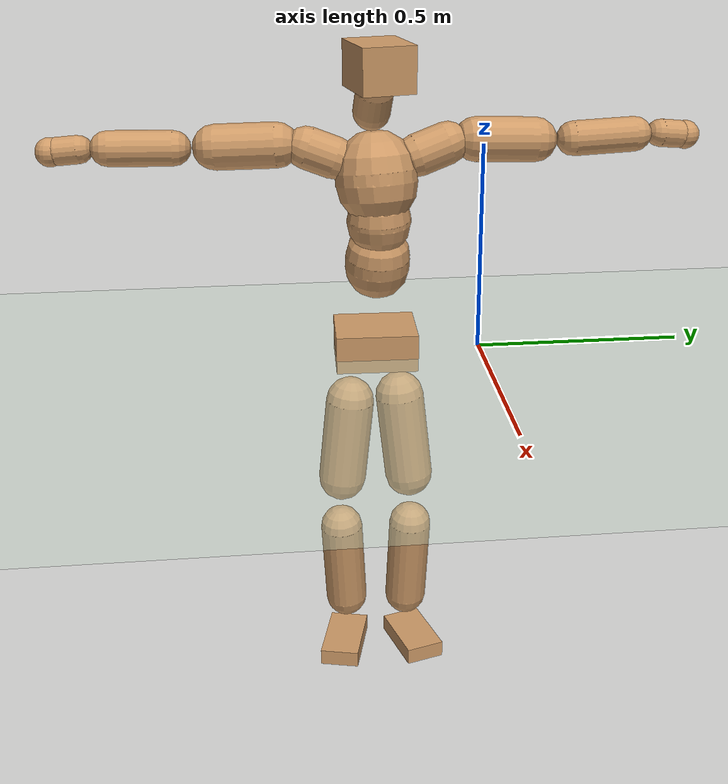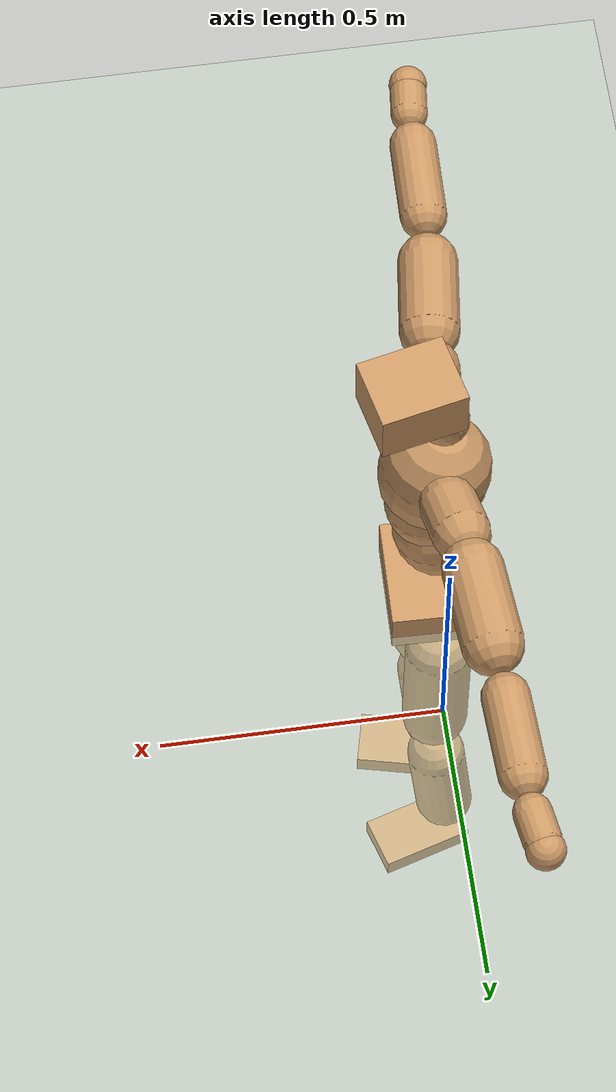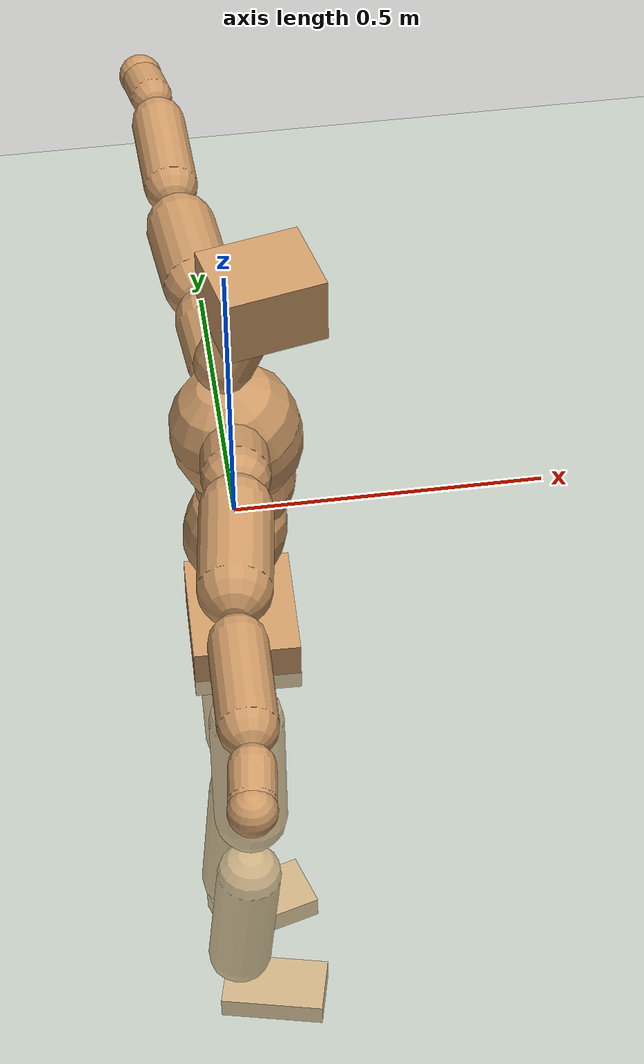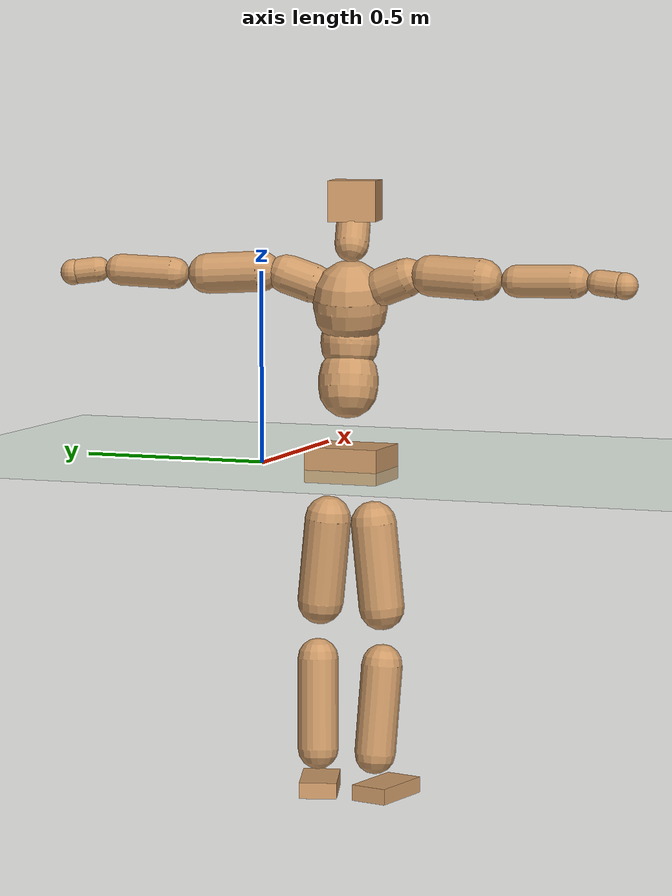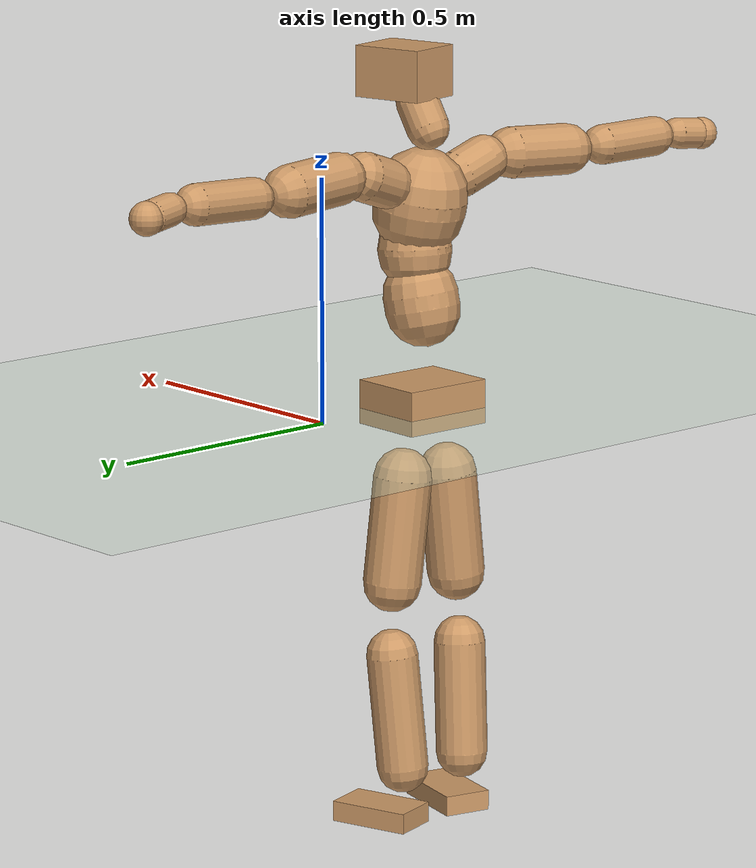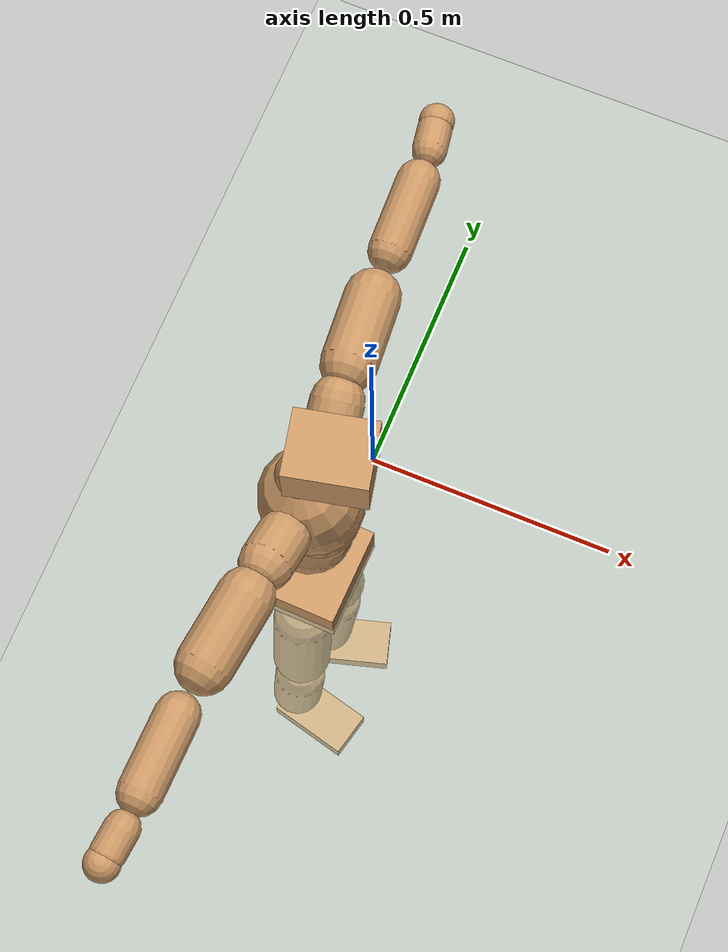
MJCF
<mujoco model="humanoid">
  <compiler coordinate="local" angle="radian"/>
  <default>
    <joint damping="0.0" armature="0.01" stiffness="0.0" limited="true"/>
    <geom conaffinity="1" condim="3" contype="7" margin="0.001" rgba="0.8 0.6 .4 1"/>
  </default>
  <asset>
    <texture type="skybox" builtin="gradient" rgb1=".4 .5 .6" rgb2="0 0 0" width="100" height="100"/>
    <texture builtin="flat" height="1278" mark="cross" markrgb="1 1 1" name="texgeom" random="0.01" rgb1="0.8 0.6 0.4" rgb2="0.8 0.6 0.4" type="cube" width="127"/>
    <texture builtin="checker" height="100" name="texplane" rgb1="0 0 0" rgb2="0.8 0.8 0.8" type="2d" width="100"/>
    <material name="MatPlane" reflectance="0.5" shininess="1" specular="1" texrepeat="60 60" texture="texplane"/>
    <material name="geom" texture="texgeom" texuniform="true"/>
  </asset>
  <worldbody>
    <light cutoff="100" diffuse="1 1 1" dir="-0 0 -1.3" directional="true" exponent="1" pos="0 0 1.3" specular=".1 .1 .1"/>
    <geom conaffinity="1" condim="3" name="floor" pos="0 0 0" rgba="0.8 0.9 0.8 1" size="100 100 .2" type="plane" material="MatPlane"/>
    <body name="Pelvis" pos="-0.0054 -0.2533 0.0195">
      <freejoint name="Pelvis"/>
      <geom type="box" contype="1" conaffinity="1" density="500" pos="-0.0114 0.0003 -0.0081" size="0.0816 0.0986 0.0458" quat="0.9999 0.0000 0.0000 -0.0129" name="Pelvis"/>
      <body name="L_Hip" pos="-0.0213 0.0537 -0.0831">
        <joint name="L_Hip_x" type="hinge" pos="0 0 0" axis="1 0 0" stiffness="800" damping="80" armature="0.02" range="-180.0000 180.0000"/>
        <joint name="L_Hip_y" type="hinge" pos="0 0 0" axis="0 1 0" stiffness="800" damping="80" armature="0.02" range="-180.0000 180.0000"/>
        <joint name="L_Hip_z" type="hinge" pos="0 0 0" axis="0 0 1" stiffness="800" damping="80" armature="0.02" range="-180.0000 180.0000"/>
        <geom type="capsule" contype="1" conaffinity="1" density="500" fromto="0.0021 0.0078 -0.0731 0.0085 0.0312 -0.2924" size="0.0603" name="L_Hip"/>
        <body name="L_Knee" pos="0.0106 0.039 -0.3655">
          <joint name="L_Knee_x" type="hinge" pos="0 0 0" axis="1 0 0" stiffness="800" damping="80" armature="0.02" range="-180.0000 180.0000"/>
          <joint name="L_Knee_y" type="hinge" pos="0 0 0" axis="0 1 0" stiffness="800" damping="80" armature="0.02" range="-180.0000 180.0000"/>
          <joint name="L_Knee_z" type="hinge" pos="0 0 0" axis="0 0 1" stiffness="800" damping="80" armature="0.02" range="-180.0000 180.0000"/>
          <geom type="capsule" contype="1" conaffinity="1" density="500" fromto="-0.0073 -0.0028 -0.0787 -0.0294 -0.0113 -0.3147" size="0.0536" name="L_Knee"/>
          <body name="L_Ankle" pos="-0.0367 -0.0141 -0.3933">
            <joint name="L_Ankle_x" type="hinge" pos="0 0 0" axis="1 0 0" stiffness="800" damping="80" armature="0.02" range="-180.0000 180.0000"/>
            <joint name="L_Ankle_y" type="hinge" pos="0 0 0" axis="0 1 0" stiffness="800" damping="80" armature="0.02" range="-180.0000 180.0000"/>
            <joint name="L_Ankle_z" type="hinge" pos="0 0 0" axis="0 0 1" stiffness="800" damping="80" armature="0.02" range="-180.0000 180.0000"/>
            <geom type="box" contype="1" conaffinity="1" density="500" pos="0.0589 0.0175 -0.0283" size="0.0854 0.0494 0.0212" quat="0.9896 0.0000 0.0000 0.1435" name="L_Ankle"/>
            <body name="L_Toe" pos="0.1178 0.0349 -0.0566">
              <joint name="L_Toe_x" type="hinge" pos="0 0 0" axis="1 0 0" stiffness="500" damping="50" armature="0.02" range="-180.0000 180.0000"/>
              <joint name="L_Toe_y" type="hinge" pos="0 0 0" axis="0 1 0" stiffness="500" damping="50" armature="0.02" range="-180.0000 180.0000"/>
              <joint name="L_Toe_z" type="hinge" pos="0 0 0" axis="0 0 1" stiffness="500" damping="50" armature="0.02" range="-180.0000 180.0000"/>
              <geom type="box" contype="1" conaffinity="1" density="500" pos="0.0000 0.0000 0.0274" size="0.0011 0.0025 0.001" quat="0.9889 0.0000 0.0000 0.1489" name="L_Toe"/>
            </body>
          </body>
        </body>
      </body>
      <body name="R_Hip" pos="-0.0164 -0.0559 -0.0917">
        <joint name="R_Hip_x" type="hinge" pos="0 0 0" axis="1 0 0" stiffness="800" damping="80" armature="0.02" range="-180.0000 180.0000"/>
        <joint name="R_Hip_y" type="hinge" pos="0 0 0" axis="0 1 0" stiffness="800" damping="80" armature="0.02" range="-180.0000 180.0000"/>
        <joint name="R_Hip_z" type="hinge" pos="0 0 0" axis="0 0 1" stiffness="800" damping="80" armature="0.02" range="-180.0000 180.0000"/>
        <geom type="capsule" contype="1" conaffinity="1" density="500" fromto="-0.0004 -0.0076 -0.0723 -0.0018 -0.0303 -0.2894" size="0.0597" name="R_Hip"/>
        <body name="R_Knee" pos="-0.0022 -0.0379 -0.3617">
          <joint name="R_Knee_x" type="hinge" pos="0 0 0" axis="1 0 0" stiffness="800" damping="80" armature="0.02" range="-180.0000 180.0000"/>
          <joint name="R_Knee_y" type="hinge" pos="0 0 0" axis="0 1 0" stiffness="800" damping="80" armature="0.02" range="-180.0000 180.0000"/>
          <joint name="R_Knee_z" type="hinge" pos="0 0 0" axis="0 0 1" stiffness="800" damping="80" armature="0.02" range="-180.0000 180.0000"/>
          <geom type="capsule" contype="1" conaffinity="1" density="500" fromto="-0.0069 0.0038 -0.0773 -0.0274 0.0153 -0.3093" size="0.0537" name="R_Knee"/>
          <body name="R_Ankle" pos="-0.0343 0.0191 -0.3866">
            <joint name="R_Ankle_x" type="hinge" pos="0 0 0" axis="1 0 0" stiffness="800" damping="80" armature="0.02" range="-180.0000 180.0000"/>
            <joint name="R_Ankle_y" type="hinge" pos="0 0 0" axis="0 1 0" stiffness="800" damping="80" armature="0.02" range="-180.0000 180.0000"/>
            <joint name="R_Ankle_z" type="hinge" pos="0 0 0" axis="0 0 1" stiffness="800" damping="80" armature="0.02" range="-180.0000 180.0000"/>
            <geom type="box" contype="1" conaffinity="1" density="500" pos="0.0635 -0.0152 -0.0282" size="0.0874 0.0494 0.0209" quat="0.9931 0.0000 0.0000 -0.1174" name="R_Ankle"/>
            <body name="R_Toe" pos="0.1269 -0.0304 -0.0563">
              <joint name="R_Toe_x" type="hinge" pos="0 0 0" axis="1 0 0" stiffness="500" damping="50" armature="0.02" range="-180.0000 180.0000"/>
              <joint name="R_Toe_y" type="hinge" pos="0 0 0" axis="0 1 0" stiffness="500" damping="50" armature="0.02" range="-180.0000 180.0000"/>
              <joint name="R_Toe_z" type="hinge" pos="0 0 0" axis="0 0 1" stiffness="500" damping="50" armature="0.02" range="-180.0000 180.0000"/>
              <geom type="box" contype="1" conaffinity="1" density="500" pos="0.0000 0.0000 0.0294" size="0.001 0.0024 0.0011" quat="0.9941 0.0000 0.0000 -0.1083" name="R_Toe"/>
            </body>
          </body>
        </body>
      </body>
      <body name="Torso" pos="-0.031 0.0039 0.1263">
        <joint name="Torso_x" type="hinge" pos="0 0 0" axis="1 0 0" stiffness="1000" damping="100" armature="0.02" range="-180.0000 180.0000"/>
        <joint name="Torso_y" type="hinge" pos="0 0 0" axis="0 1 0" stiffness="1000" damping="100" armature="0.02" range="-180.0000 180.0000"/>
        <joint name="Torso_z" type="hinge" pos="0 0 0" axis="0 0 1" stiffness="1000" damping="100" armature="0.02" range="-180.0000 180.0000"/>
        <geom type="capsule" contype="1" conaffinity="1" density="500" fromto="0.0184 0.0036 0.0894 0.0123 0.0024 0.0596" size="0.0773" name="Torso"/>
        <body name="Spine" pos="0.0306 0.006 0.149">
          <joint name="Spine_x" type="hinge" pos="0 0 0" axis="1 0 0" stiffness="1000" damping="100" armature="0.02" range="-180.0000 180.0000"/>
          <joint name="Spine_y" type="hinge" pos="0 0 0" axis="0 1 0" stiffness="1000" damping="100" armature="0.02" range="-180.0000 180.0000"/>
          <joint name="Spine_z" type="hinge" pos="0 0 0" axis="0 0 1" stiffness="1000" damping="100" armature="0.02" range="-180.0000 180.0000"/>
          <geom type="capsule" contype="1" conaffinity="1" density="500" fromto="0.0030 -0.0007 0.0362 0.0020 -0.0005 0.0242" size="0.0756" name="Spine"/>
          <body name="Chest" pos="0.005 -0.0012 0.0604">
            <joint name="Chest_x" type="hinge" pos="0 0 0" axis="1 0 0" stiffness="1000" damping="100" armature="0.02" range="-180.0000 180.0000"/>
            <joint name="Chest_y" type="hinge" pos="0 0 0" axis="0 1 0" stiffness="1000" damping="100" armature="0.02" range="-180.0000 180.0000"/>
            <joint name="Chest_z" type="hinge" pos="0 0 0" axis="0 0 1" stiffness="1000" damping="100" armature="0.02" range="-180.0000 180.0000"/>
            <geom type="capsule" contype="1" conaffinity="1" density="500" fromto="-0.0153 -0.0049 0.0841 -0.0102 -0.0033 0.0561" size="0.0963" name="Chest"/>
            <body name="Neck" pos="-0.0356 -0.0147 0.2034">
              <joint name="Neck_x" type="hinge" pos="0 0 0" axis="1 0 0" stiffness="500" damping="50" armature="0.02" range="-180.0000 180.0000"/>
              <joint name="Neck_y" type="hinge" pos="0 0 0" axis="0 1 0" stiffness="500" damping="50" armature="0.02" range="-180.0000 180.0000"/>
              <joint name="Neck_z" type="hinge" pos="0 0 0" axis="0 0 1" stiffness="500" damping="50" armature="0.02" range="-180.0000 180.0000"/>
              <geom type="capsule" contype="1" conaffinity="1" density="500" fromto="0.0088 0.0016 0.0169 0.0351 0.0066 0.0677" size="0.044" name="Neck"/>
              <body name="Head" pos="0.0438 0.0082 0.0846">
                <joint name="Head_x" type="hinge" pos="0 0 0" axis="1 0 0" stiffness="500" damping="50" armature="0.02" range="-180.0000 180.0000"/>
                <joint name="Head_y" type="hinge" pos="0 0 0" axis="0 1 0" stiffness="500" damping="50" armature="0.02" range="-180.0000 180.0000"/>
                <joint name="Head_z" type="hinge" pos="0 0 0" axis="0 0 1" stiffness="500" damping="50" armature="0.02" range="-180.0000 180.0000"/>
                <geom type="box" contype="1" conaffinity="1" density="500" pos="0.0229 0.0051 0.0433" size="0.0757 0.062 0.0522" quat="0.9940 0.0000 0.0000 0.1094" name="Head"/>
              </body>
            </body>
            <body name="L_Thorax" pos="-0.0175 0.0678 0.1097">
              <joint name="L_Thorax_x" type="hinge" pos="0 0 0" axis="1 0 0" stiffness="500" damping="50" armature="0.02" range="-180.0000 180.0000"/>
              <joint name="L_Thorax_y" type="hinge" pos="0 0 0" axis="0 1 0" stiffness="500" damping="50" armature="0.02" range="-180.0000 180.0000"/>
              <joint name="L_Thorax_z" type="hinge" pos="0 0 0" axis="0 0 1" stiffness="500" damping="50" armature="0.02" range="-180.0000 180.0000"/>
              <geom type="capsule" contype="1" conaffinity="1" density="500" fromto="-0.0034 0.0237 0.0082 -0.0137 0.0949 0.0327" size="0.0505" name="L_Thorax"/>
              <body name="L_Shoulder" pos="-0.0171 0.1186 0.0409">
                <joint name="L_Shoulder_x" type="hinge" pos="0 0 0" axis="1 0 0" stiffness="500" damping="50" armature="0.02" range="-720.0000 720.0000"/>
                <joint name="L_Shoulder_y" type="hinge" pos="0 0 0" axis="0 1 0" stiffness="500" damping="50" armature="0.02" range="-720.0000 720.0000"/>
                <joint name="L_Shoulder_z" type="hinge" pos="0 0 0" axis="0 0 1" stiffness="500" damping="50" armature="0.02" range="-720.0000 720.0000"/>
                <geom type="capsule" contype="1" conaffinity="1" density="500" fromto="-0.0041 0.0468 -0.0025 -0.0162 0.1872 -0.0101" size="0.0532" name="L_Shoulder"/>
                <body name="L_Elbow" pos="-0.0203 0.234 -0.0126">
                  <joint name="L_Elbow_x" type="hinge" pos="0 0 0" axis="1 0 0" stiffness="500" damping="50" armature="0.02" range="-720.0000 720.0000"/>
                  <joint name="L_Elbow_y" type="hinge" pos="0 0 0" axis="0 1 0" stiffness="500" damping="50" armature="0.02" range="-720.0000 720.0000"/>
                  <joint name="L_Elbow_z" type="hinge" pos="0 0 0" axis="0 0 1" stiffness="500" damping="50" armature="0.02" range="-720.0000 720.0000"/>
                  <geom type="capsule" contype="1" conaffinity="1" density="500" fromto="-0.0016 0.0491 0.0019 -0.0063 0.1964 0.0078" size="0.0415" name="L_Elbow"/>
                  <body name="L_Wrist" pos="-0.0078 0.2455 0.0097">
                    <joint name="L_Wrist_x" type="hinge" pos="0 0 0" axis="1 0 0" stiffness="300" damping="30" armature="0.02" range="-180.0000 180.0000"/>
                    <joint name="L_Wrist_y" type="hinge" pos="0 0 0" axis="0 1 0" stiffness="300" damping="30" armature="0.02" range="-180.0000 180.0000"/>
                    <joint name="L_Wrist_z" type="hinge" pos="0 0 0" axis="0 0 1" stiffness="300" damping="30" armature="0.02" range="-180.0000 180.0000"/>
                    <geom type="capsule" contype="1" conaffinity="1" density="500" fromto="-0.0029 0.0165 -0.0020 -0.0117 0.0659 -0.0081" size="0.0328" name="L_Wrist"/>
                    <body name="L_Hand" pos="-0.0146 0.0823 -0.0101">
                      <joint name="L_Hand_x" type="hinge" pos="0 0 0" axis="1 0 0" stiffness="300" damping="30" armature="0.02" range="-180.0000 180.0000"/>
                      <joint name="L_Hand_y" type="hinge" pos="0 0 0" axis="0 1 0" stiffness="300" damping="30" armature="0.02" range="-180.0000 180.0000"/>
                      <joint name="L_Hand_z" type="hinge" pos="0 0 0" axis="0 0 1" stiffness="300" damping="30" armature="0.02" range="-180.0000 180.0000"/>
                      <geom type="sphere" contype="1" conaffinity="1" density="500" size="0.0339" pos="0.0000 0.0000 0.0000" name="L_Hand"/>
                    </body>
                  </body>
                </body>
              </body>
            </body>
            <body name="R_Thorax" pos="-0.0233 -0.0777 0.1074">
              <joint name="R_Thorax_x" type="hinge" pos="0 0 0" axis="1 0 0" stiffness="500" damping="50" armature="0.02" range="-180.0000 180.0000"/>
              <joint name="R_Thorax_y" type="hinge" pos="0 0 0" axis="0 1 0" stiffness="500" damping="50" armature="0.02" range="-180.0000 180.0000"/>
              <joint name="R_Thorax_z" type="hinge" pos="0 0 0" axis="0 0 1" stiffness="500" damping="50" armature="0.02" range="-180.0000 180.0000"/>
              <geom type="capsule" contype="1" conaffinity="1" density="500" fromto="-0.0015 -0.0214 0.0082 -0.0059 -0.0854 0.0328" size="0.0499" name="R_Thorax"/>
              <body name="R_Shoulder" pos="-0.0073 -0.1068 0.0409">
                <joint name="R_Shoulder_x" type="hinge" pos="0 0 0" axis="1 0 0" stiffness="500" damping="50" armature="0.02" range="-720.0000 720.0000"/>
                <joint name="R_Shoulder_y" type="hinge" pos="0 0 0" axis="0 1 0" stiffness="500" damping="50" armature="0.02" range="-720.0000 720.0000"/>
                <joint name="R_Shoulder_z" type="hinge" pos="0 0 0" axis="0 0 1" stiffness="500" damping="50" armature="0.02" range="-720.0000 720.0000"/>
                <geom type="capsule" contype="1" conaffinity="1" density="500" fromto="-0.0060 -0.0466 -0.0020 -0.0239 -0.1865 -0.0078" size="0.053" name="R_Shoulder"/>
                <body name="R_Elbow" pos="-0.0299 -0.2331 -0.0098">
                  <joint name="R_Elbow_x" type="hinge" pos="0 0 0" axis="1 0 0" stiffness="500" damping="50" armature="0.02" range="-720.0000 720.0000"/>
                  <joint name="R_Elbow_y" type="hinge" pos="0 0 0" axis="0 1 0" stiffness="500" damping="50" armature="0.02" range="-720.0000 720.0000"/>
                  <joint name="R_Elbow_z" type="hinge" pos="0 0 0" axis="0 0 1" stiffness="500" damping="50" armature="0.02" range="-720.0000 720.0000"/>
                  <geom type="capsule" contype="1" conaffinity="1" density="500" fromto="-0.0012 -0.0491 0.0007 -0.0047 -0.1964 0.0026" size="0.0415" name="R_Elbow"/>
                  <body name="R_Wrist" pos="-0.0058 -0.2456 0.0033">
                    <joint name="R_Wrist_x" type="hinge" pos="0 0 0" axis="1 0 0" stiffness="300" damping="30" armature="0.02" range="-180.0000 180.0000"/>
                    <joint name="R_Wrist_y" type="hinge" pos="0 0 0" axis="0 1 0" stiffness="300" damping="30" armature="0.02" range="-180.0000 180.0000"/>
                    <joint name="R_Wrist_z" type="hinge" pos="0 0 0" axis="0 0 1" stiffness="300" damping="30" armature="0.02" range="-180.0000 180.0000"/>
                    <geom type="capsule" contype="1" conaffinity="1" density="500" fromto="-0.0018 -0.0165 -0.0016 -0.0074 -0.0661 -0.0063" size="0.0326" name="R_Wrist"/>
                    <body name="R_Hand" pos="-0.0092 -0.0827 -0.0079">
                      <joint name="R_Hand_x" type="hinge" pos="0 0 0" axis="1 0 0" stiffness="300" damping="30" armature="0.02" range="-180.0000 180.0000"/>
                      <joint name="R_Hand_y" type="hinge" pos="0 0 0" axis="0 1 0" stiffness="300" damping="30" armature="0.02" range="-180.0000 180.0000"/>
                      <joint name="R_Hand_z" type="hinge" pos="0 0 0" axis="0 0 1" stiffness="300" damping="30" armature="0.02" range="-180.0000 180.0000"/>
                      <geom type="sphere" contype="1" conaffinity="1" density="500" size="0.0337" pos="0.0000 0.0000 0.0000" name="R_Hand"/>
                    </body>
                  </body>
                </body>
              </body>
            </body>
          </body>
        </body>
      </body>
    </body>
  </worldbody>
  <actuator>
    <motor name="L_Hip_x" joint="L_Hip_x" gear="500"/>
    <motor name="L_Hip_y" joint="L_Hip_y" gear="500"/>
    <motor name="L_Hip_z" joint="L_Hip_z" gear="500"/>
    <motor name="L_Knee_x" joint="L_Knee_x" gear="500"/>
    <motor name="L_Knee_y" joint="L_Knee_y" gear="500"/>
    <motor name="L_Knee_z" joint="L_Knee_z" gear="500"/>
    <motor name="L_Ankle_x" joint="L_Ankle_x" gear="500"/>
    <motor name="L_Ankle_y" joint="L_Ankle_y" gear="500"/>
    <motor name="L_Ankle_z" joint="L_Ankle_z" gear="500"/>
    <motor name="L_Toe_x" joint="L_Toe_x" gear="500"/>
    <motor name="L_Toe_y" joint="L_Toe_y" gear="500"/>
    <motor name="L_Toe_z" joint="L_Toe_z" gear="500"/>
    <motor name="R_Hip_x" joint="R_Hip_x" gear="500"/>
    <motor name="R_Hip_y" joint="R_Hip_y" gear="500"/>
    <motor name="R_Hip_z" joint="R_Hip_z" gear="500"/>
    <motor name="R_Knee_x" joint="R_Knee_x" gear="500"/>
    <motor name="R_Knee_y" joint="R_Knee_y" gear="500"/>
    <motor name="R_Knee_z" joint="R_Knee_z" gear="500"/>
    <motor name="R_Ankle_x" joint="R_Ankle_x" gear="500"/>
    <motor name="R_Ankle_y" joint="R_Ankle_y" gear="500"/>
    <motor name="R_Ankle_z" joint="R_Ankle_z" gear="500"/>
    <motor name="R_Toe_x" joint="R_Toe_x" gear="500"/>
    <motor name="R_Toe_y" joint="R_Toe_y" gear="500"/>
    <motor name="R_Toe_z" joint="R_Toe_z" gear="500"/>
    <motor name="Torso_x" joint="Torso_x" gear="500"/>
    <motor name="Torso_y" joint="Torso_y" gear="500"/>
    <motor name="Torso_z" joint="Torso_z" gear="500"/>
    <motor name="Spine_x" joint="Spine_x" gear="500"/>
    <motor name="Spine_y" joint="Spine_y" gear="500"/>
    <motor name="Spine_z" joint="Spine_z" gear="500"/>
    <motor name="Chest_x" joint="Chest_x" gear="500"/>
    <motor name="Chest_y" joint="Chest_y" gear="500"/>
    <motor name="Chest_z" joint="Chest_z" gear="500"/>
    <motor name="Neck_x" joint="Neck_x" gear="500"/>
    <motor name="Neck_y" joint="Neck_y" gear="500"/>
    <motor name="Neck_z" joint="Neck_z" gear="500"/>
    <motor name="Head_x" joint="Head_x" gear="500"/>
    <motor name="Head_y" joint="Head_y" gear="500"/>
    <motor name="Head_z" joint="Head_z" gear="500"/>
    <motor name="L_Thorax_x" joint="L_Thorax_x" gear="500"/>
    <motor name="L_Thorax_y" joint="L_Thorax_y" gear="500"/>
    <motor name="L_Thorax_z" joint="L_Thorax_z" gear="500"/>
    <motor name="L_Shoulder_x" joint="L_Shoulder_x" gear="500"/>
    <motor name="L_Shoulder_y" joint="L_Shoulder_y" gear="500"/>
    <motor name="L_Shoulder_z" joint="L_Shoulder_z" gear="500"/>
    <motor name="L_Elbow_x" joint="L_Elbow_x" gear="500"/>
    <motor name="L_Elbow_y" joint="L_Elbow_y" gear="500"/>
    <motor name="L_Elbow_z" joint="L_Elbow_z" gear="500"/>
    <motor name="L_Wrist_x" joint="L_Wrist_x" gear="500"/>
    <motor name="L_Wrist_y" joint="L_Wrist_y" gear="500"/>
    <motor name="L_Wrist_z" joint="L_Wrist_z" gear="500"/>
    <motor name="L_Hand_x" joint="L_Hand_x" gear="500"/>
    <motor name="L_Hand_y" joint="L_Hand_y" gear="500"/>
    <motor name="L_Hand_z" joint="L_Hand_z" gear="500"/>
    <motor name="R_Thorax_x" joint="R_Thorax_x" gear="500"/>
    <motor name="R_Thorax_y" joint="R_Thorax_y" gear="500"/>
    <motor name="R_Thorax_z" joint="R_Thorax_z" gear="500"/>
    <motor name="R_Shoulder_x" joint="R_Shoulder_x" gear="500"/>
    <motor name="R_Shoulder_y" joint="R_Shoulder_y" gear="500"/>
    <motor name="R_Shoulder_z" joint="R_Shoulder_z" gear="500"/>
    <motor name="R_Elbow_x" joint="R_Elbow_x" gear="500"/>
    <motor name="R_Elbow_y" joint="R_Elbow_y" gear="500"/>
    <motor name="R_Elbow_z" joint="R_Elbow_z" gear="500"/>
    <motor name="R_Wrist_x" joint="R_Wrist_x" gear="500"/>
    <motor name="R_Wrist_y" joint="R_Wrist_y" gear="500"/>
    <motor name="R_Wrist_z" joint="R_Wrist_z" gear="500"/>
    <motor name="R_Hand_x" joint="R_Hand_x" gear="500"/>
    <motor name="R_Hand_y" joint="R_Hand_y" gear="500"/>
    <motor name="R_Hand_z" joint="R_Hand_z" gear="500"/>
  </actuator>
  <contact>
    <exclude body1="Torso" body2="Chest"/>
    <exclude body1="Head" body2="Chest"/>
    <exclude body1="R_Knee" body2="R_Toe"/>
    <exclude body1="R_Knee" body2="L_Ankle"/>
    <exclude body1="R_Knee" body2="L_Toe"/>
    <exclude body1="L_Knee" body2="L_Toe"/>
    <exclude body1="L_Knee" body2="R_Ankle"/>
    <exclude body1="L_Knee" body2="R_Toe"/>
    <exclude body1="L_Shoulder" body2="Chest"/>
    <exclude body1="R_Shoulder" body2="Chest"/>
  </contact>
  <sensor/>
  <size njmax="700" nconmax="700"/>
</mujoco>
